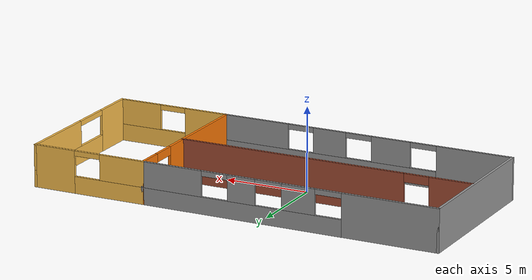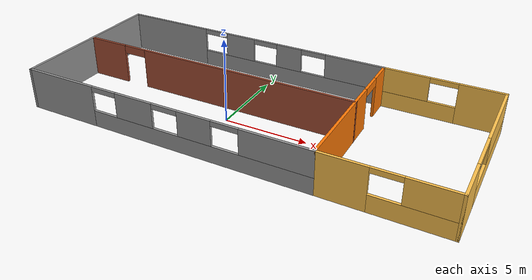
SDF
<?xml version='1.0'?>
<sdf version='1.6'>
  <model name='model'>
    <pose frame=''>1.64436 1.00262 0 0 -0 0</pose>
    <link name='Wall_14'>
      <collision name='Wall_14_Collision'>
        <geometry>
          <box>
            <size>10 0.15 2.5</size>
          </box>
        </geometry>
        <pose frame=''>0 0 1.25 0 -0 0</pose>
      </collision>
      <visual name='Wall_14_Visual'>
        <pose frame=''>0 0 1.25 0 -0 0</pose>
        <geometry>
          <box>
            <size>10 0.15 2.5</size>
          </box>
        </geometry>
        <material>
          <script>
            <uri>file://media/materials/scripts/gazebo.material</uri>
            <name>Gazebo/Grey</name>
          </script>
          <ambient>1 1 1 1</ambient>
        </material>
        <meta>
          <layer>0</layer>
        </meta>
      </visual>
      <pose frame=''>-12.35 0 0 0 -0 1.5708</pose>
    </link>
    <link name='Wall_2'>
      <pose frame=''>-3.425 -4.925 0 0 -0 0</pose>
      <visual name='Wall_2_Visual_0'>
        <pose frame=''>-6.67972 0 1.25 0 -0 0</pose>
        <geometry>
          <box>
            <size>4.64056 0.15 2.5</size>
          </box>
        </geometry>
        <material>
          <script>
            <uri>file://media/materials/scripts/gazebo.material</uri>
            <name>Gazebo/Grey</name>
          </script>
          <ambient>1 1 1 1</ambient>
        </material>
        <meta>
          <layer>0</layer>
        </meta>
      </visual>
      <collision name='Wall_2_Collision_0'>
        <geometry>
          <box>
            <size>4.64056 0.15 2.5</size>
          </box>
        </geometry>
        <pose frame=''>-6.67972 0 1.25 0 -0 0</pose>
      </collision>
      <visual name='Wall_2_Visual_1'>
        <pose frame=''>2.32028 0 0.5 0 -0 0</pose>
        <geometry>
          <box>
            <size>13.3594 0.15 1</size>
          </box>
        </geometry>
        <material>
          <script>
            <uri>file://media/materials/scripts/gazebo.material</uri>
            <name>Gazebo/Grey</name>
          </script>
          <ambient>1 1 1 1</ambient>
        </material>
        <meta>
          <layer>0</layer>
        </meta>
      </visual>
      <collision name='Wall_2_Collision_1'>
        <geometry>
          <box>
            <size>13.3594 0.15 1</size>
          </box>
        </geometry>
        <pose frame=''>2.32028 0 0.5 0 -0 0</pose>
      </collision>
      <visual name='Wall_2_Visual_2'>
        <pose frame=''>-1.55367 0 1.75 0 -0 0</pose>
        <geometry>
          <box>
            <size>2.41153 0.15 1.5</size>
          </box>
        </geometry>
        <material>
          <script>
            <uri>file://media/materials/scripts/gazebo.material</uri>
            <name>Gazebo/Grey</name>
          </script>
          <ambient>1 1 1 1</ambient>
        </material>
        <meta>
          <layer>0</layer>
        </meta>
      </visual>
      <collision name='Wall_2_Collision_2'>
        <geometry>
          <box>
            <size>2.41153 0.15 1.5</size>
          </box>
        </geometry>
        <pose frame=''>-1.55367 0 1.75 0 -0 0</pose>
      </collision>
      <visual name='Wall_2_Visual_3'>
        <pose frame=''>2.27221 0 1.75 0 -0 0</pose>
        <geometry>
          <box>
            <size>2.04024 0.15 1.5</size>
          </box>
        </geometry>
        <material>
          <script>
            <uri>file://media/materials/scripts/gazebo.material</uri>
            <name>Gazebo/Grey</name>
          </script>
          <ambient>1 1 1 1</ambient>
        </material>
        <meta>
          <layer>0</layer>
        </meta>
      </visual>
      <collision name='Wall_2_Collision_3'>
        <geometry>
          <box>
            <size>2.04024 0.15 1.5</size>
          </box>
        </geometry>
        <pose frame=''>2.27221 0 1.75 0 -0 0</pose>
      </collision>
      <visual name='Wall_2_Visual_4'>
        <pose frame=''>6.94616 0 1.75 0 -0 0</pose>
        <geometry>
          <box>
            <size>4.10767 0.15 1.5</size>
          </box>
        </geometry>
        <material>
          <script>
            <uri>file://media/materials/scripts/gazebo.material</uri>
            <name>Gazebo/Grey</name>
          </script>
          <ambient>1 1 1 1</ambient>
        </material>
        <meta>
          <layer>0</layer>
        </meta>
      </visual>
      <collision name='Wall_2_Collision_4'>
        <geometry>
          <box>
            <size>4.10767 0.15 1.5</size>
          </box>
        </geometry>
        <pose frame=''>6.94616 0 1.75 0 -0 0</pose>
      </collision>
      <visual name='Wall_2_Visual_5'>
        <pose frame=''>-3.55944 0 2.35 0 -0 0</pose>
        <geometry>
          <box>
            <size>1.6 0.15 0.3</size>
          </box>
        </geometry>
        <material>
          <script>
            <uri>file://media/materials/scripts/gazebo.material</uri>
            <name>Gazebo/Grey</name>
          </script>
          <ambient>1 1 1 1</ambient>
        </material>
        <meta>
          <layer>0</layer>
        </meta>
      </visual>
      <collision name='Wall_2_Collision_5'>
        <geometry>
          <box>
            <size>1.6 0.15 0.3</size>
          </box>
        </geometry>
        <pose frame=''>-3.55944 0 2.35 0 -0 0</pose>
      </collision>
      <visual name='Wall_2_Visual_6'>
        <pose frame=''>0.452091 0 2.35 0 -0 0</pose>
        <geometry>
          <box>
            <size>1.6 0.15 0.3</size>
          </box>
        </geometry>
        <material>
          <script>
            <uri>file://media/materials/scripts/gazebo.material</uri>
            <name>Gazebo/Grey</name>
          </script>
          <ambient>1 1 1 1</ambient>
        </material>
        <meta>
          <layer>0</layer>
        </meta>
      </visual>
      <collision name='Wall_2_Collision_6'>
        <geometry>
          <box>
            <size>1.6 0.15 0.3</size>
          </box>
        </geometry>
        <pose frame=''>0.452091 0 2.35 0 -0 0</pose>
      </collision>
      <visual name='Wall_2_Visual_7'>
        <pose frame=''>4.09233 0 2.35 0 -0 0</pose>
        <geometry>
          <box>
            <size>1.6 0.15 0.3</size>
          </box>
        </geometry>
        <material>
          <script>
            <uri>file://media/materials/scripts/gazebo.material</uri>
            <name>Gazebo/Grey</name>
          </script>
          <ambient>1 1 1 1</ambient>
        </material>
        <meta>
          <layer>0</layer>
        </meta>
      </visual>
      <collision name='Wall_2_Collision_7'>
        <geometry>
          <box>
            <size>1.6 0.15 0.3</size>
          </box>
        </geometry>
        <pose frame=''>4.09233 0 2.35 0 -0 0</pose>
      </collision>
    </link>
    <link name='Wall_21'>
      <pose frame=''>-3.425 4.925 0 0 -0 0</pose>
      <visual name='Wall_21_Visual_0'>
        <pose frame=''>-6.12354 0 1.25 0 -0 0</pose>
        <geometry>
          <box>
            <size>5.75291 0.15 2.5</size>
          </box>
        </geometry>
        <material>
          <script>
            <uri>file://media/materials/scripts/gazebo.material</uri>
            <name>Gazebo/Grey</name>
          </script>
          <ambient>1 1 1 1</ambient>
        </material>
        <meta>
          <layer>0</layer>
        </meta>
      </visual>
      <collision name='Wall_21_Collision_0'>
        <geometry>
          <box>
            <size>5.75291 0.15 2.5</size>
          </box>
        </geometry>
        <pose frame=''>-6.12354 0 1.25 0 -0 0</pose>
      </collision>
      <visual name='Wall_21_Visual_1'>
        <pose frame=''>2.87646 0 0.5 0 -0 0</pose>
        <geometry>
          <box>
            <size>12.2471 0.15 1</size>
          </box>
        </geometry>
        <material>
          <script>
            <uri>file://media/materials/scripts/gazebo.material</uri>
            <name>Gazebo/Grey</name>
          </script>
          <ambient>1 1 1 1</ambient>
        </material>
        <meta>
          <layer>0</layer>
        </meta>
      </visual>
      <collision name='Wall_21_Collision_1'>
        <geometry>
          <box>
            <size>12.2471 0.15 1</size>
          </box>
        </geometry>
        <pose frame=''>2.87646 0 0.5 0 -0 0</pose>
      </collision>
      <visual name='Wall_21_Visual_2'>
        <pose frame=''>-0.636863 0 1.75 0 -0 0</pose>
        <geometry>
          <box>
            <size>2.02044 0.15 1.5</size>
          </box>
        </geometry>
        <material>
          <script>
            <uri>file://media/materials/scripts/gazebo.material</uri>
            <name>Gazebo/Grey</name>
          </script>
          <ambient>1 1 1 1</ambient>
        </material>
        <meta>
          <layer>0</layer>
        </meta>
      </visual>
      <collision name='Wall_21_Collision_2'>
        <geometry>
          <box>
            <size>2.02044 0.15 1.5</size>
          </box>
        </geometry>
        <pose frame=''>-0.636863 0 1.75 0 -0 0</pose>
      </collision>
      <visual name='Wall_21_Visual_3'>
        <pose frame=''>2.81953 0 1.75 0 -0 0</pose>
        <geometry>
          <box>
            <size>1.69234 0.15 1.5</size>
          </box>
        </geometry>
        <material>
          <script>
            <uri>file://media/materials/scripts/gazebo.material</uri>
            <name>Gazebo/Grey</name>
          </script>
          <ambient>1 1 1 1</ambient>
        </material>
        <meta>
          <layer>0</layer>
        </meta>
      </visual>
      <collision name='Wall_21_Collision_3'>
        <geometry>
          <box>
            <size>1.69234 0.15 1.5</size>
          </box>
        </geometry>
        <pose frame=''>2.81953 0 1.75 0 -0 0</pose>
      </collision>
      <visual name='Wall_21_Visual_4'>
        <pose frame=''>7.13285 0 1.75 0 -0 0</pose>
        <geometry>
          <box>
            <size>3.7343 0.15 1.5</size>
          </box>
        </geometry>
        <material>
          <script>
            <uri>file://media/materials/scripts/gazebo.material</uri>
            <name>Gazebo/Grey</name>
          </script>
          <ambient>1 1 1 1</ambient>
        </material>
        <meta>
          <layer>0</layer>
        </meta>
      </visual>
      <collision name='Wall_21_Collision_4'>
        <geometry>
          <box>
            <size>3.7343 0.15 1.5</size>
          </box>
        </geometry>
        <pose frame=''>7.13285 0 1.75 0 -0 0</pose>
      </collision>
      <visual name='Wall_21_Visual_5'>
        <pose frame=''>-2.44708 0 2.35 0 -0 0</pose>
        <geometry>
          <box>
            <size>1.6 0.15 0.3</size>
          </box>
        </geometry>
        <material>
          <script>
            <uri>file://media/materials/scripts/gazebo.material</uri>
            <name>Gazebo/Grey</name>
          </script>
          <ambient>1 1 1 1</ambient>
        </material>
        <meta>
          <layer>0</layer>
        </meta>
      </visual>
      <collision name='Wall_21_Collision_5'>
        <geometry>
          <box>
            <size>1.6 0.15 0.3</size>
          </box>
        </geometry>
        <pose frame=''>-2.44708 0 2.35 0 -0 0</pose>
      </collision>
      <visual name='Wall_21_Visual_6'>
        <pose frame=''>1.17336 0 2.35 0 -0 0</pose>
        <geometry>
          <box>
            <size>1.6 0.15 0.3</size>
          </box>
        </geometry>
        <material>
          <script>
            <uri>file://media/materials/scripts/gazebo.material</uri>
            <name>Gazebo/Grey</name>
          </script>
          <ambient>1 1 1 1</ambient>
        </material>
        <meta>
          <layer>0</layer>
        </meta>
      </visual>
      <collision name='Wall_21_Collision_6'>
        <geometry>
          <box>
            <size>1.6 0.15 0.3</size>
          </box>
        </geometry>
        <pose frame=''>1.17336 0 2.35 0 -0 0</pose>
      </collision>
      <visual name='Wall_21_Visual_7'>
        <pose frame=''>4.4657 0 2.35 0 -0 0</pose>
        <geometry>
          <box>
            <size>1.6 0.15 0.3</size>
          </box>
        </geometry>
        <material>
          <script>
            <uri>file://media/materials/scripts/gazebo.material</uri>
            <name>Gazebo/Grey</name>
          </script>
          <ambient>1 1 1 1</ambient>
        </material>
        <meta>
          <layer>0</layer>
        </meta>
      </visual>
      <collision name='Wall_21_Collision_7'>
        <geometry>
          <box>
            <size>1.6 0.15 0.3</size>
          </box>
        </geometry>
        <pose frame=''>4.4657 0 2.35 0 -0 0</pose>
      </collision>
    </link>
    <link name='Wall_23'>
      <pose frame=''>5.5 0 0 0 -0 -1.5708</pose>
      <visual name='Wall_23_Visual_0'>
        <pose frame=''>-4.19626 0 1.25 0 -0 0</pose>
        <geometry>
          <box>
            <size>1.60748 0.15 2.5</size>
          </box>
        </geometry>
        <material>
          <script>
            <uri>file://media/materials/scripts/gazebo.material</uri>
            <name>Gazebo/Grey</name>
          </script>
          <ambient>0.996078 0.47451 0.0196078 1</ambient>
        </material>
        <meta>
          <layer>0</layer>
        </meta>
      </visual>
      <collision name='Wall_23_Collision_0'>
        <geometry>
          <box>
            <size>1.60748 0.15 2.5</size>
          </box>
        </geometry>
        <pose frame=''>-4.19626 0 1.25 0 -0 0</pose>
      </collision>
      <visual name='Wall_23_Visual_1'>
        <pose frame=''>1.55374 0 1.25 0 -0 0</pose>
        <geometry>
          <box>
            <size>6.89252 0.15 2.5</size>
          </box>
        </geometry>
        <material>
          <script>
            <uri>file://media/materials/scripts/gazebo.material</uri>
            <name>Gazebo/Grey</name>
          </script>
          <ambient>0.996078 0.47451 0.0196078 1</ambient>
        </material>
        <meta>
          <layer>0</layer>
        </meta>
      </visual>
      <collision name='Wall_23_Collision_1'>
        <geometry>
          <box>
            <size>6.89252 0.15 2.5</size>
          </box>
        </geometry>
        <pose frame=''>1.55374 0 1.25 0 -0 0</pose>
      </collision>
      <visual name='Wall_23_Visual_2'>
        <pose frame=''>-2.64252 0 2.25 0 -0 0</pose>
        <geometry>
          <box>
            <size>1.5 0.15 0.5</size>
          </box>
        </geometry>
        <material>
          <script>
            <uri>file://media/materials/scripts/gazebo.material</uri>
            <name>Gazebo/Grey</name>
          </script>
          <ambient>0.996078 0.47451 0.0196078 1</ambient>
        </material>
        <meta>
          <layer>0</layer>
        </meta>
      </visual>
      <collision name='Wall_23_Collision_2'>
        <geometry>
          <box>
            <size>1.5 0.15 0.5</size>
          </box>
        </geometry>
        <pose frame=''>-2.64252 0 2.25 0 -0 0</pose>
      </collision>
    </link>
    <link name='Wall_24'>
      <pose frame=''>8.925 -4.925 0 0 -0 0</pose>
      <visual name='Wall_24_Visual_0'>
        <pose frame=''>-2.13386 0 1.25 0 -0 0</pose>
        <geometry>
          <box>
            <size>2.73228 0.15 2.5</size>
          </box>
        </geometry>
        <material>
          <script>
            <uri>file://media/materials/scripts/gazebo.material</uri>
            <name>Gazebo/Grey</name>
          </script>
          <ambient>1 0.764706 0.305882 1</ambient>
        </material>
        <meta>
          <layer>0</layer>
        </meta>
      </visual>
      <collision name='Wall_24_Collision_0'>
        <geometry>
          <box>
            <size>2.73228 0.15 2.5</size>
          </box>
        </geometry>
        <pose frame=''>-2.13386 0 1.25 0 -0 0</pose>
      </collision>
      <visual name='Wall_24_Visual_1'>
        <pose frame=''>1.36614 0 0.5 0 -0 0</pose>
        <geometry>
          <box>
            <size>4.26772 0.15 1</size>
          </box>
        </geometry>
        <material>
          <script>
            <uri>file://media/materials/scripts/gazebo.material</uri>
            <name>Gazebo/Grey</name>
          </script>
          <ambient>1 0.764706 0.305882 1</ambient>
        </material>
        <meta>
          <layer>0</layer>
        </meta>
      </visual>
      <collision name='Wall_24_Collision_1'>
        <geometry>
          <box>
            <size>4.26772 0.15 1</size>
          </box>
        </geometry>
        <pose frame=''>1.36614 0 0.5 0 -0 0</pose>
      </collision>
      <visual name='Wall_24_Visual_2'>
        <pose frame=''>2.16614 0 1.75 0 -0 0</pose>
        <geometry>
          <box>
            <size>2.66772 0.15 1.5</size>
          </box>
        </geometry>
        <material>
          <script>
            <uri>file://media/materials/scripts/gazebo.material</uri>
            <name>Gazebo/Grey</name>
          </script>
          <ambient>1 0.764706 0.305882 1</ambient>
        </material>
        <meta>
          <layer>0</layer>
        </meta>
      </visual>
      <collision name='Wall_24_Collision_2'>
        <geometry>
          <box>
            <size>2.66772 0.15 1.5</size>
          </box>
        </geometry>
        <pose frame=''>2.16614 0 1.75 0 -0 0</pose>
      </collision>
      <visual name='Wall_24_Visual_3'>
        <pose frame=''>0.032279 0 2.35 0 -0 0</pose>
        <geometry>
          <box>
            <size>1.6 0.15 0.3</size>
          </box>
        </geometry>
        <material>
          <script>
            <uri>file://media/materials/scripts/gazebo.material</uri>
            <name>Gazebo/Grey</name>
          </script>
          <ambient>1 0.764706 0.305882 1</ambient>
        </material>
        <meta>
          <layer>0</layer>
        </meta>
      </visual>
      <collision name='Wall_24_Collision_3'>
        <geometry>
          <box>
            <size>1.6 0.15 0.3</size>
          </box>
        </geometry>
        <pose frame=''>0.032279 0 2.35 0 -0 0</pose>
      </collision>
    </link>
    <link name='Wall_25'>
      <pose frame=''>12.35 0 0 0 -0 1.5708</pose>
      <visual name='Wall_25_Visual_0'>
        <pose frame=''>-3.70668 0 1.25 0 -0 0</pose>
        <geometry>
          <box>
            <size>2.58664 0.15 2.5</size>
          </box>
        </geometry>
        <material>
          <script>
            <uri>file://media/materials/scripts/gazebo.material</uri>
            <name>Gazebo/Grey</name>
          </script>
          <ambient>1 0.764706 0.305882 1</ambient>
        </material>
        <meta>
          <layer>0</layer>
        </meta>
      </visual>
      <collision name='Wall_25_Collision_0'>
        <geometry>
          <box>
            <size>2.58664 0.15 2.5</size>
          </box>
        </geometry>
        <pose frame=''>-3.70668 0 1.25 0 -0 0</pose>
      </collision>
      <visual name='Wall_25_Visual_1'>
        <pose frame=''>1.29332 0 0.5 0 -0 0</pose>
        <geometry>
          <box>
            <size>7.41336 0.15 1</size>
          </box>
        </geometry>
        <material>
          <script>
            <uri>file://media/materials/scripts/gazebo.material</uri>
            <name>Gazebo/Grey</name>
          </script>
          <ambient>1 0.764706 0.305882 1</ambient>
        </material>
        <meta>
          <layer>0</layer>
        </meta>
      </visual>
      <collision name='Wall_25_Collision_1'>
        <geometry>
          <box>
            <size>7.41336 0.15 1</size>
          </box>
        </geometry>
        <pose frame=''>1.29332 0 0.5 0 -0 0</pose>
      </collision>
      <visual name='Wall_25_Visual_2'>
        <pose frame=''>2.49332 0 1.75 0 -0 0</pose>
        <geometry>
          <box>
            <size>5.01336 0.15 1.5</size>
          </box>
        </geometry>
        <material>
          <script>
            <uri>file://media/materials/scripts/gazebo.material</uri>
            <name>Gazebo/Grey</name>
          </script>
          <ambient>1 0.764706 0.305882 1</ambient>
        </material>
        <meta>
          <layer>0</layer>
        </meta>
      </visual>
      <collision name='Wall_25_Collision_2'>
        <geometry>
          <box>
            <size>5.01336 0.15 1.5</size>
          </box>
        </geometry>
        <pose frame=''>2.49332 0 1.75 0 -0 0</pose>
      </collision>
      <visual name='Wall_25_Visual_3'>
        <pose frame=''>-1.21336 0 2.35 0 -0 0</pose>
        <geometry>
          <box>
            <size>2.4 0.15 0.3</size>
          </box>
        </geometry>
        <material>
          <script>
            <uri>file://media/materials/scripts/gazebo.material</uri>
            <name>Gazebo/Grey</name>
          </script>
          <ambient>1 0.764706 0.305882 1</ambient>
        </material>
        <meta>
          <layer>0</layer>
        </meta>
      </visual>
      <collision name='Wall_25_Collision_3'>
        <geometry>
          <box>
            <size>2.4 0.15 0.3</size>
          </box>
        </geometry>
        <pose frame=''>-1.21336 0 2.35 0 -0 0</pose>
      </collision>
    </link>
    <link name='Wall_26'>
      <pose frame=''>8.925 4.925 0 0 -0 3.14159</pose>
      <visual name='Wall_26_Visual_0'>
        <pose frame=''>-2.19673 0 1.25 0 -0 0</pose>
        <geometry>
          <box>
            <size>2.60654 0.15 2.5</size>
          </box>
        </geometry>
        <material>
          <script>
            <uri>file://media/materials/scripts/gazebo.material</uri>
            <name>Gazebo/Grey</name>
          </script>
          <ambient>1 0.764706 0.305882 1</ambient>
        </material>
        <meta>
          <layer>0</layer>
        </meta>
      </visual>
      <collision name='Wall_26_Collision_0'>
        <geometry>
          <box>
            <size>2.60654 0.15 2.5</size>
          </box>
        </geometry>
        <pose frame=''>-2.19673 0 1.25 0 -0 0</pose>
      </collision>
      <visual name='Wall_26_Visual_1'>
        <pose frame=''>1.30327 0 0.5 0 -0 0</pose>
        <geometry>
          <box>
            <size>4.39346 0.15 1</size>
          </box>
        </geometry>
        <material>
          <script>
            <uri>file://media/materials/scripts/gazebo.material</uri>
            <name>Gazebo/Grey</name>
          </script>
          <ambient>1 0.764706 0.305882 1</ambient>
        </material>
        <meta>
          <layer>0</layer>
        </meta>
      </visual>
      <collision name='Wall_26_Collision_1'>
        <geometry>
          <box>
            <size>4.39346 0.15 1</size>
          </box>
        </geometry>
        <pose frame=''>1.30327 0 0.5 0 -0 0</pose>
      </collision>
      <visual name='Wall_26_Visual_2'>
        <pose frame=''>2.10327 0 1.75 0 -0 0</pose>
        <geometry>
          <box>
            <size>2.79346 0.15 1.5</size>
          </box>
        </geometry>
        <material>
          <script>
            <uri>file://media/materials/scripts/gazebo.material</uri>
            <name>Gazebo/Grey</name>
          </script>
          <ambient>1 0.764706 0.305882 1</ambient>
        </material>
        <meta>
          <layer>0</layer>
        </meta>
      </visual>
      <collision name='Wall_26_Collision_2'>
        <geometry>
          <box>
            <size>2.79346 0.15 1.5</size>
          </box>
        </geometry>
        <pose frame=''>2.10327 0 1.75 0 -0 0</pose>
      </collision>
      <visual name='Wall_26_Visual_3'>
        <pose frame=''>-0.09346 0 2.35 0 -0 0</pose>
        <geometry>
          <box>
            <size>1.6 0.15 0.3</size>
          </box>
        </geometry>
        <material>
          <script>
            <uri>file://media/materials/scripts/gazebo.material</uri>
            <name>Gazebo/Grey</name>
          </script>
          <ambient>1 0.764706 0.305882 1</ambient>
        </material>
        <meta>
          <layer>0</layer>
        </meta>
      </visual>
      <collision name='Wall_26_Collision_3'>
        <geometry>
          <box>
            <size>1.6 0.15 0.3</size>
          </box>
        </geometry>
        <pose frame=''>-0.09346 0 2.35 0 -0 0</pose>
      </collision>
    </link>
    <link name='Wall_28'>
      <pose frame=''>-3.41699 0.307878 0 0 -0 0</pose>
      <visual name='Wall_28_Visual_0'>
        <pose frame=''>-7.64433 0 1.25 0 -0 0</pose>
        <geometry>
          <box>
            <size>2.71133 0.15 2.5</size>
          </box>
        </geometry>
        <material>
          <script>
            <uri>file://media/materials/scripts/gazebo.material</uri>
            <name>Gazebo/Bricks</name>
          </script>
          <ambient>0.996078 0.47451 0.0196078 1</ambient>
        </material>
        <meta>
          <layer>0</layer>
        </meta>
      </visual>
      <collision name='Wall_28_Collision_0'>
        <geometry>
          <box>
            <size>2.71133 0.15 2.5</size>
          </box>
        </geometry>
        <pose frame=''>-7.64433 0 1.25 0 -0 0</pose>
      </collision>
      <visual name='Wall_28_Visual_1'>
        <pose frame=''>2.10567 0 1.25 0 -0 0</pose>
        <geometry>
          <box>
            <size>13.7887 0.15 2.5</size>
          </box>
        </geometry>
        <material>
          <script>
            <uri>file://media/materials/scripts/gazebo.material</uri>
            <name>Gazebo/Bricks</name>
          </script>
          <ambient>0.996078 0.47451 0.0196078 1</ambient>
        </material>
        <meta>
          <layer>0</layer>
        </meta>
      </visual>
      <collision name='Wall_28_Collision_1'>
        <geometry>
          <box>
            <size>13.7887 0.15 2.5</size>
          </box>
        </geometry>
        <pose frame=''>2.10567 0 1.25 0 -0 0</pose>
      </collision>
      <visual name='Wall_28_Visual_2'>
        <pose frame=''>-5.53867 0 2.25 0 -0 0</pose>
        <geometry>
          <box>
            <size>1.5 0.15 0.5</size>
          </box>
        </geometry>
        <material>
          <script>
            <uri>file://media/materials/scripts/gazebo.material</uri>
            <name>Gazebo/Bricks</name>
          </script>
          <ambient>0.996078 0.47451 0.0196078 1</ambient>
        </material>
        <meta>
          <layer>0</layer>
        </meta>
      </visual>
      <collision name='Wall_28_Collision_2'>
        <geometry>
          <box>
            <size>1.5 0.15 0.5</size>
          </box>
        </geometry>
        <pose frame=''>-5.53867 0 2.25 0 -0 0</pose>
      </collision>
    </link>
    <static>1</static>
  </model>
</sdf>
